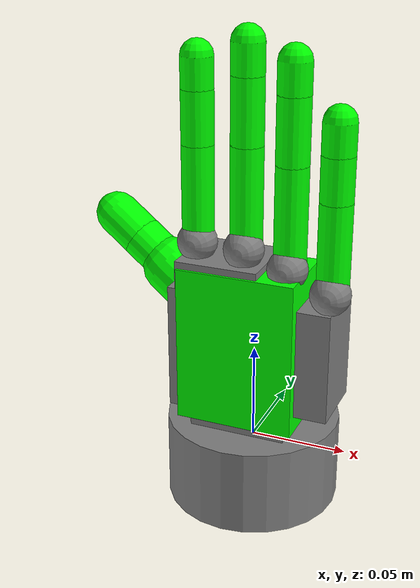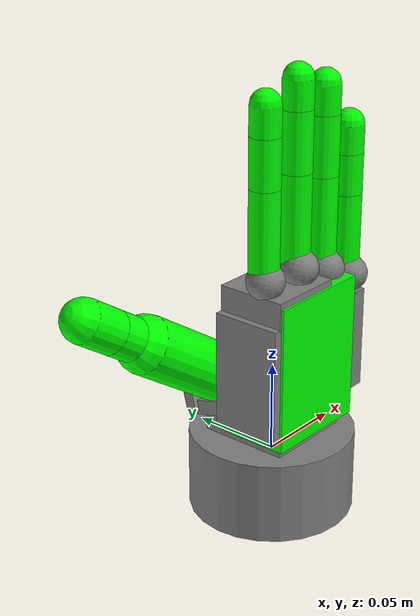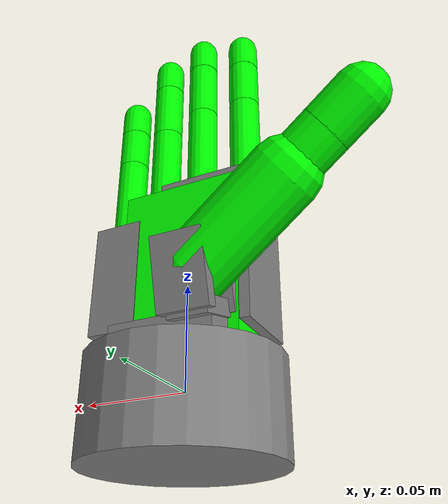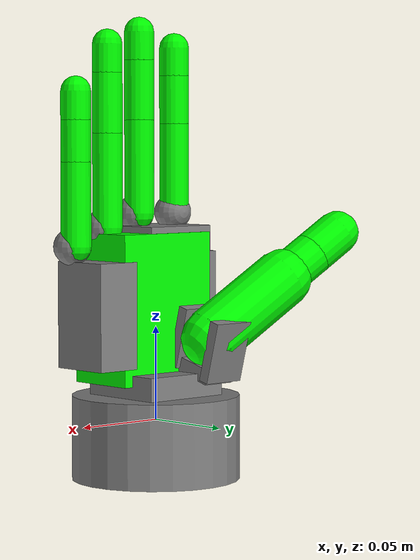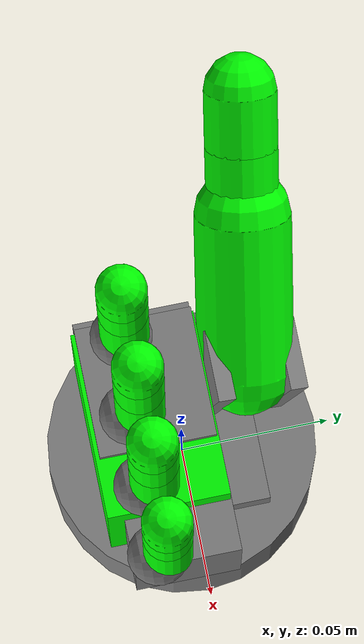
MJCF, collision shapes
<mujoco model="svh">
  <compiler angle="radian" meshdir="assets/" />

  <default>
    <!-- disable all contacts and use explicit collision pairs -->
    <geom density="800" condim="1" contype="0" conaffinity="0" />
    <!-- with this setting, the response time is around 1s -->
    <position kp="300" dampratio="1.0" inheritrange="1" />
    <joint damping="0.0" armature="1.0" frictionloss="0.0" />
    <site size="0.005" type="sphere" rgba="1 0 0 1" group="3" />
  </default>

  <asset>
    <texture type="skybox" builtin="gradient" rgb1="1.0 1.0 1.0" rgb2="1.0 1.0 1.0" width="512"
      height="3072" />
    <texture type="2d" name="right_groundplane" builtin="checker" mark="edge" rgb1="1 1 1"
      rgb2="1 1 1" markrgb="0.8 0.8 0.8" width="300" height="300" />
    <material name="right_groundplane" texture="right_groundplane" texuniform="true" texrepeat="5 5"
      reflectance="0.2" />
    <mesh name="right_d11" content_type="model/obj" file="d11.obj" />
    <mesh name="right_d12" content_type="model/obj" file="d12.obj" />
    <mesh name="right_d13" content_type="model/obj" file="d13.obj" />
    <mesh name="right_f11" content_type="model/obj" file="f11.obj" />
    <mesh name="right_f12" content_type="model/obj" file="f12.obj" />
    <mesh name="right_finger_tip" content_type="model/obj" file="finger_tip.obj" />
    <mesh name="right_f21" content_type="model/obj" file="f21.obj" />
    <mesh name="right_f22_f32" content_type="model/obj" file="f22_f32.obj" />
    <mesh name="right_f31" content_type="model/obj" file="f31.obj" />
    <mesh name="right_f41" content_type="model/obj" file="f41.obj" />
    <mesh name="right_f42" content_type="model/obj" file="f42.obj" />
  </asset>

  <worldbody>
    <body name="R_forearm_ty_link">
      <camera name="right_track" pos="0.868 -0.348 -0.175"
        xyaxes="0.037 0.999 -0.000 0.011 -0.000 1.000" />
      <inertial pos="0 0 0" mass="0.01" diaginertia="0.01 0.01 0.01" />
      <joint name="R_forearm_tx_link_joint" pos="0 0 0" axis="1 0 0" type="slide" range="-5 5" />
      <body name="R_forearm_tz_link">
        <inertial pos="0 0 0" mass="0.01" diaginertia="0.01 0.01 0.01" />
        <joint name="R_forearm_ty_link_joint" pos="0 0 0" axis="0 1 0" type="slide" range="-5 5" />
        <body name="R_forearm_roll_link">
          <inertial pos="0 0 0" mass="0.01" diaginertia="0.01 0.01 0.01" />
          <joint name="R_forearm_tz_link_joint" pos="0 0 0" axis="0 0 1" type="slide" range="-5 5" />
          <body name="R_forearm_pitch_link">
            <inertial pos="0 0 0" mass="0.01" diaginertia="0.01 0.01 0.01" />
            <joint name="R_forearm_roll_link_joint" pos="0 0 0" axis="0 0 1" range="-6.2 6.2" />
            <body name="R_forearm_yaw_link">
              <inertial pos="0 0 0" mass="0.01" diaginertia="0.01 0.01 0.01" />
              <joint name="R_forearm_pitch_link_joint" pos="0 0 0" axis="1 0 0" range="-6.2 6.2" />
              <body name="right_hand_base_link">
                <inertial pos="-6.48554e-05 -0.00451484 0.127324"
                  quat="0.496466 0.503155 -0.508367 0.491853" mass="0.6112"
                  diaginertia="0.0865419 0.0593417 0.0588699" />
                <joint name="R_forearm_yaw_link_joint" pos="0 0 0" axis="0 1 0" range="-6.2 6.2" />
                <geom size="0.045 0.0225" pos="0 0 -0.009" type="cylinder" />
                <geom size="0.025 0.025 0.013" pos="0 0 0.013" type="box" />
                <geom size="0.0292 0.019 0.03205" pos="-0.00573 -0.00963 0.05747" type="box" />
                <geom size="0.021 0.019 0.0075" pos="-0.01 -0.00963 0.096" type="box" />
                <geom size="0.01" pos="-3.09209e-07 -0.01634 0.11" quat="0.500048 0.499952 -0.5 0.5" />

                <!-- Collision: palm -->
                <geom name="collision_hand_right_palm_0" type="box" size="0.03 0.02 0.04"
                  pos="0 -0.01 0.06" rgba="0 1 0 1" group="3" />
                <site name="right_palm" pos="0 0 0" type="box" size="0.01 0.02 0.03" quat="1 0 0 1" />
                <body name="right_hand_z" pos="-0.0169 0.01313 0"
                  quat="0.700986 -0.0923056 0.0922868 0.701129">
                  <inertial pos="0 0.002024 0.178636" quat="0.481281 0.518043 0.481281 0.518043"
                    mass="0.0739" diaginertia="0.00165295 0.00110705 0.00103" />
                  <joint name="right_hand_Thumb_Opposition" pos="0 0 0" axis="0 0 -1"
                    range="0 0.9879" />
                  <geom size="0.012 0.0094 0.004" pos="0 0 0.02842" type="box" />
                  <geom size="0.003 0.012 0.0165" pos="0.0125 0 0.04292" type="box" />
                  <geom size="0.003 0.012 0.0165" pos="-0.0125 0 0.04292" type="box" />
                  <body name="right_hand_a" pos="0 0 0.04596"
                    quat="0.329787 0.625494 0.329779 0.625494">
                    <inertial pos="0.240205 0.010733 0.00019"
                      quat="0.0202941 0.706815 -0.0202941 0.706815" mass="0.41222"
                      diaginertia="0.01796 0.016832 0.00408805" />
                    <joint name="right_hand_Thumb_Flexion" pos="0 0 0" axis="0 0 1" range="0 0.9704" />
                    <geom type="mesh" mesh="right_d11" />
                    <geom name="collision_hand_right_thumb_2" type="capsule" size="0.016"
                      fromto="0 0 0 0.055 0 0" rgba="0 1 0 1" group="3" />
                    <body name="right_hand_b" pos="0.0485 0 0">
                      <inertial pos="0.123157 -0.008382 -2.7e-05"
                        quat="0.524056 0.524056 0.474727 0.474727" mass="0.08224"
                        diaginertia="0.00139495 0.00103 0.000885049" />
                      <joint name="right_hand_j3" pos="0 0 0" axis="0 0 1" range="0 0.98506" />
                      <geom type="mesh" mesh="right_d12" />
                      <geom name="collision_hand_right_thumb_1" type="capsule" size="0.012"
                        fromto="0 0 0 0.03 0 0" rgba="0 1 0 1" group="3" />
                      <body name="right_hand_c" pos="0.03 0 0">
                        <inertial pos="0.007 0 0" quat="0.5 0.5 0.5 0.5" mass="0.02"
                          diaginertia="2e-05 2e-05 1e-05" />
                        <joint name="right_hand_j4" pos="0 0 0" axis="0 0 1" range="0 1.406" />
                        <geom type="mesh" mesh="right_d13" />
                        <geom name="collision_hand_right_thumb_0" type="capsule" size="0.012"
                          fromto="0 0 0 0.02 0 0" rgba="0 1 0 1" group="3" />
                        <site name="right_thumb_tip" pos="0.02 0.01 0" />
                        <site name="trace_hand_right_thumb_tip" pos="0.02 0.01 0" />
                        <site name="track_hand_right_thumb_tip" pos="0.02 0.01 0" />
                      </body>
                    </body>
                  </body>
                </body>
                <body name="right_hand_e2" pos="0.0184 -0.00713 0.0375">
                  <inertial pos="0.145071 -0.037868 0.323449"
                    quat="0.951685 0.143658 0.0293436 -0.26981" mass="0.46184"
                    diaginertia="0.019814 0.0171408 0.00778522" />
                  <joint name="right_hand_block_joint" pos="0 0 0" axis="0 0 1" range="0 0.98786" />
                  <geom size="0.0123 0.0175 0.0282" pos="0.016 0 0.02" type="box" />
                  <geom size="0.006 0.009 0.0105" pos="0.0032 -0.0083 0.048" type="box" />
                  <body name="right_hand_virtual_j" pos="0.003855 -0.006 0.0655"
                    quat="0.500048 -0.5 -0.5 -0.499952">
                    <inertial pos="0.003805 0.000386 0.100079"
                      quat="0.69352 0.69352 -0.13795 0.13795" mass="0.02377"
                      diaginertia="0.000214142 0.000185858 0.00011" />
                    <joint name="right_hand_ring_spread" pos="0 0 0" axis="0 0 1" range="0 0.28833" />
                    <geom size="0.01" pos="0 0 -0.00321" />
                    <body name="right_hand_j" quat="0.707141 0.707073 0 0">
                      <inertial pos="0.258283 -0.00154 0"
                        quat="0.0178138 0.706882 -0.0178138 0.706882" mass="0.1377"
                        diaginertia="0.00426 0.00411908 0.000540922" />
                      <joint name="right_hand_Ring_Finger" pos="0 0 0" axis="0 0 1"
                        range="0 0.98175" />
                      <geom type="mesh" mesh="right_f31" />
                      <geom name="collision_hand_right_ring_2" type="capsule" size="0.008"
                        fromto="0 0 0 0.05004 0 0" rgba="0 1 0 1" group="3" />
                      <body name="right_hand_n" pos="0.05004 0 0">
                        <inertial pos="0.166851 -0.00362 0" quat="0.5 0.5 0.5 0.5" mass="0.04207"
                          diaginertia="0.00047 0.0004 0.00019" />
                        <joint name="right_hand_j12" pos="0 0 0" axis="0 0 1" range="0 1.334" />
                        <geom type="mesh" mesh="right_f22_f32" />
                        <geom name="collision_hand_right_ring_1" type="capsule" size="0.008"
                          fromto="0 0 0 0.032 0 0" rgba="0 1 0 1" group="3" />
                        <body name="right_hand_r" pos="0.032 0 0">
                          <inertial pos="0.007 0 0" quat="0.5 0.5 0.5 0.5" mass="0.02"
                            diaginertia="2e-05 2e-05 1e-05" />
                          <joint name="right_hand_j16" pos="0 0 0" axis="0 0 1" range="0 1.395" />
                          <geom type="mesh" mesh="right_finger_tip" />
                          <geom name="collision_hand_right_ring_0" type="capsule" size="0.008"
                            rgba="0 1 0 1" group="3" fromto="0 0 0 0.015 0 0.00" />
                          <site name="right_ring_tip" pos="0.01 0.007 0.00" />
                          <site name="trace_hand_right_ring_tip" pos="0.01 0.007 0.00" />
                          <site name="track_hand_right_ring_tip" pos="0.01 0.007 0.00" />
                        </body>
                      </body>
                    </body>
                  </body>
                  <body name="right_hand_virtual_i" pos="0.025355 -0.006 0.056"
                    quat="0.500048 -0.5 -0.5 -0.499952">
                    <inertial pos="0.003653 4.4e-05 0.100085"
                      quat="0.69352 0.69352 -0.13795 0.13795" mass="0.02377"
                      diaginertia="0.000214142 0.000185858 0.00011" />
                    <joint name="right_hand_Finger_Spread" pos="0 0 0" axis="0 0 1" range="0 0.5829" />
                    <geom size="0.01" pos="0 0 -0.00321" />
                    <body name="right_hand_i" quat="0.707141 0.707073 0 0">
                      <inertial pos="0.232293 0.00622 0"
                        quat="0.00793951 0.707062 -0.00793951 0.707062" mass="0.12544"
                        diaginertia="0.00328 0.00316135 0.000488652" />
                      <joint name="right_hand_Pinky" pos="0 0 0" axis="0 0 1" range="0 0.98175" />
                      <geom type="mesh" mesh="right_f41" />
                      <geom name="collision_hand_right_pinky_2" type="capsule" size="0.008"
                        fromto="0 0 0 0.04454 0 0" rgba="0 1 0 1" group="3" />
                      <body name="right_hand_m" pos="0.04454 0 0">
                        <inertial pos="0.007 0 0" quat="0.5 0.5 0.5 0.5" mass="0.02"
                          diaginertia="2e-06 2e-06 8e-07" />
                        <joint name="right_hand_j13" pos="0 0 0" axis="0 0 1" range="0 1.334" />
                        <geom type="mesh" mesh="right_f42" />
                        <geom name="collision_hand_right_pinky_1" type="capsule" size="0.008"
                          fromto="0 0 0 0.022 0 0" rgba="0 1 0 1" group="3" />
                        <body name="right_hand_q" pos="0.022 0 0">
                          <inertial pos="0.007 0 0" quat="0.5 0.5 0.5 0.5" mass="0.02"
                            diaginertia="2e-05 2e-05 1e-05" />
                          <joint name="right_hand_j17" pos="0 0 0" axis="0 0 1" range="0 1.3971" />
                          <geom type="mesh" mesh="right_finger_tip" />
                          <geom name="collision_hand_right_pinky_0" type="capsule" size="0.008"
                            rgba="0 1 0 1" group="3" fromto="0 0 0 0.015 0 0.00" />
                          <site name="right_pinky_tip" pos="0.01 0.007 0.00" />
                          <site name="trace_hand_right_pinky_tip" pos="0.01 0.007 0.00" />
                          <site name="track_hand_right_pinky_tip" pos="0.01 0.007 0.00" />
                        </body>
                      </body>
                    </body>
                  </body>
                </body>
                <body name="right_hand_virtual_l" pos="-0.025 -0.01313 0.11"
                  quat="0.500048 0.499952 -0.5 0.5">
                  <inertial pos="0.003634 0.000206 -0.09885" quat="0.69352 0.69352 0.13795 -0.13795"
                    mass="0.02383" diaginertia="0.000214142 0.000185858 0.00011" />
                  <joint name="right_hand_index_spread" pos="0 0 0" axis="0 0 1" range="0 0.28833" />
                  <geom size="0.01" pos="0 0 0.00121" />
                  <body name="right_hand_l" quat="0.707141 -0.707073 0 0">
                    <inertial pos="0.261673 0.003521 0"
                      quat="-0.00373415 0.707097 0.00373415 0.707097" mass="0.13003"
                      diaginertia="0.00344 0.00335032 0.000509683" />
                    <joint name="right_hand_Index_Finger_Proximal" pos="0 0 0" axis="0 0 1"
                      range="0 0.79849" />
                    <geom type="mesh" mesh="right_f11" />
                    <geom name="collision_hand_right_index_2" type="capsule" size="0.008"
                      fromto="0 0 0 0.04804 0 0" rgba="0 1 0 1" group="3" />
                    <body name="right_hand_p" pos="0.04804 0 0">
                      <inertial pos="0.01 0 0" quat="0.5 0.5 0.5 0.5" mass="0.024"
                        diaginertia="1.96667e-06 1.96667e-06 1.96667e-06" />
                      <joint name="right_hand_Index_Finger_Distal" pos="0 0 0" axis="0 0 1"
                        range="0 1.334" />
                      <geom type="mesh" mesh="right_f12" />
                      <geom name="collision_hand_right_index_1" type="capsule" size="0.008"
                        fromto="0 0 0 0.026 0 0" rgba="0 1 0 1" group="3" />
                      <body name="right_hand_t" pos="0.026 0 0">
                        <inertial pos="0.007 0 0" quat="0.5 0.5 0.5 0.5" mass="0.02"
                          diaginertia="2e-05 2e-05 1e-05" />
                        <joint name="right_hand_j14" pos="0 0 0" axis="0 0 1" range="0 1.394" />
                        <geom type="mesh" mesh="right_finger_tip" />
                        <geom name="collision_hand_right_index_0" type="capsule" size="0.008"
                          rgba="0 1 0 1" group="3" fromto="0 0 0 0.015 0 0.00" />
                        <site name="right_index_tip" pos="0.01 0.007 0.00" />
                        <site name="trace_hand_right_index_tip" pos="0.01 0.007 0.00" />
                        <site name="track_hand_right_index_tip" pos="0.01 0.007 0.00" />
                      </body>
                    </body>
                  </body>
                </body>
                <body name="right_hand_k" pos="0 -0.01313 0.11"
                  quat="0.707107 -3.40567e-05 -0.707107 3.40567e-05">
                  <inertial pos="0.271122 0.00413 0" quat="-0.003335 0.707099 0.003335 0.707099"
                    mass="0.13474" diaginertia="0.0038 0.00370028 0.000519717" />
                  <joint name="right_hand_Middle_Finger_Proximal" pos="0 0 0" axis="0 0 1"
                    range="0 0.79849" />
                  <geom type="mesh" mesh="right_f21" />
                  <geom name="collision_hand_right_middle_2" type="capsule" size="0.008"
                    fromto="0 0 0 0.05004 0 0" rgba="0 1 0 1" group="3" />
                  <body name="right_hand_o" pos="0.05004 0 0">
                    <inertial pos="0.16683 -0.003774 0" quat="0.5 0.5 0.5 0.5" mass="0.0422"
                      diaginertia="0.00047 0.0004 0.0002" />
                    <joint name="right_hand_Middle_Finger_Distal" pos="0 0 0" axis="0 0 1"
                      range="0 1.334" />
                    <geom type="mesh" mesh="right_f22_f32" />
                    <geom name="collision_hand_right_middle_1" type="capsule" size="0.008"
                      fromto="0 0 0 0.032 0 0" rgba="0 1 0 1" group="3" />
                    <body name="right_hand_s" pos="0.032 0 0">
                      <inertial pos="0.007 0 0" quat="0.5 0.5 0.5 0.5" mass="0.02"
                        diaginertia="2e-05 2e-05 1e-05" />
                      <joint name="right_hand_j15" pos="0 0 0" axis="0 0 1" range="0 1.334" />
                      <geom type="mesh" mesh="right_finger_tip" />
                      <geom name="collision_hand_right_middle_0" type="capsule" size="0.008"
                        rgba="0 1 0 1" group="3" fromto="0 0 0 0.015 0 0.00" />
                      <site name="right_middle_tip" pos="0.01 0.007 0.00" />
                      <site name="trace_hand_right_middle_tip" pos="0.01 0.007 0.00" />
                      <site name="track_hand_right_middle_tip" pos="0.01 0.007 0.00" />
                    </body>
                  </body>
                </body>
              </body>
            </body>
          </body>
        </body>
      </body>
    </body>
  </worldbody>

  <actuator>
    <!-- Global position and rotation joints -->
    <position name="right_pos_x_position" joint="R_forearm_tx_link_joint" kp="1000" />
    <position name="right_pos_y_position" joint="R_forearm_ty_link_joint" kp="1000" />
    <position name="right_pos_z_position" joint="R_forearm_tz_link_joint" kp="1000" />
    <position name="right_rot_z_position" joint="R_forearm_roll_link_joint" kp="1000" />
    <position name="right_rot_x_position" joint="R_forearm_pitch_link_joint" kp="1000" />
    <position name="right_rot_y_position" joint="R_forearm_yaw_link_joint" kp="1000" />

    <!-- Thumb joints -->
    <position name="right_thumb_opposition_position" joint="right_hand_Thumb_Opposition" />
    <position name="right_thumb_flexion_position" joint="right_hand_Thumb_Flexion" />
    <position name="right_thumb_intermediate_position" joint="right_hand_j3" />
    <position name="right_thumb_distal_position" joint="right_hand_j4" />
    <position name="right_block_position" joint="right_hand_block_joint" />

    <!-- Ring joints -->
    <position name="right_ring_spread_position" joint="right_hand_ring_spread" />
    <position name="right_ring_proximal_position" joint="right_hand_Ring_Finger" />
    <position name="right_ring_intermediate_position" joint="right_hand_j12" />
    <position name="right_ring_distal_position" joint="right_hand_j16" />

    <!-- Pinky joints -->
    <position name="right_finger_spread_position" joint="right_hand_Finger_Spread" />
    <position name="right_pinky_proximal_position" joint="right_hand_Pinky" />
    <position name="right_pinky_intermediate_position" joint="right_hand_j13" />
    <position name="right_pinky_distal_position" joint="right_hand_j17" />

    <!-- Index joints -->
    <position name="right_index_spread_position" joint="right_hand_index_spread" />
    <position name="right_index_proximal_position" joint="right_hand_Index_Finger_Proximal" />
    <position name="right_index_intermediate_position" joint="right_hand_Index_Finger_Distal" />
    <position name="right_index_distal_position" joint="right_hand_j14" />

    <!-- Middle joints -->
    <position name="right_middle_proximal_position" joint="right_hand_Middle_Finger_Proximal" />
    <position name="right_middle_intermediate_position" joint="right_hand_Middle_Finger_Distal" />
    <position name="right_middle_distal_position" joint="right_hand_j15" />
  </actuator>
</mujoco>
